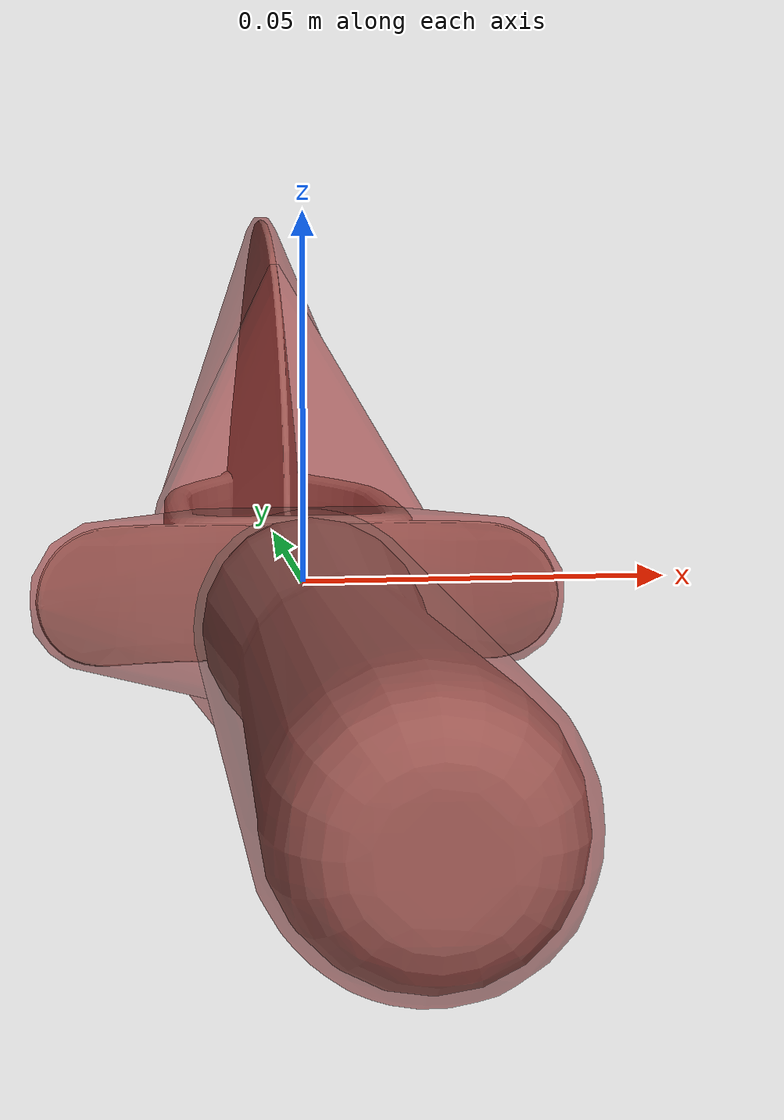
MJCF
<mujoco model="model">
  <option timestep="0.002" gravity="0.0 0.0 -9.81"/>
  <compiler angle="radian"/>
  <asset>
    <mesh file="visual/PizzaCutter001.obj" name="PizzaCutter001_vis"/>
    <mesh file="visual/Prop.obj" name="PizzaCutter001_Prop_vis"/>
    <texture file="visual/T_BC001.png" name="PizzaCutter001_material" type="2d"/>
    <material name="PizzaCutter001_material" rgba="1 1 1 1.0" texture="PizzaCutter001_material" shininess="0.1" specular="1"/>
    <texture file="visual/T_BC001.png" name="PizzaCutter001_Prop_material" type="2d"/>
    <material name="PizzaCutter001_Prop_material" rgba="1 1 1 1.0" texture="PizzaCutter001_Prop_material" shininess="0.1" specular="5"/>
    <mesh file="collision/collision_mesh_collision_0.obj" name="PizzaCutter001_collision_mesh_0"/>
    <mesh file="collision/collision_mesh_collision_1.obj" name="PizzaCutter001_collision_mesh_1"/>
    <mesh file="collision/collision_mesh_collision_2.obj" name="PizzaCutter001_collision_mesh_2"/>
    <mesh file="collision/collision_mesh_collision_3.obj" name="PizzaCutter001_collision_mesh_3"/>
    <mesh file="collision/collision_mesh_collision_4.obj" name="PizzaCutter001_collision_mesh_4"/>
  </asset>
  <default>
    <default class="visual">
      <geom conaffinity="0" contype="0" group="1" type="mesh"/>
    </default>
    <default class="collision">
      <geom group="0" rgba="0.5 0 0 0.5" density="1.0" solref="0.004 1" solimp="0.998 0.998 0.001"/>
    </default>
    <default class="spawn">
      <geom group="0" rgba="1 1 1 0.5" contype="0" conaffinity="0"/>
      <site group="0" rgba="1 1 1 0.5"/>
    </default>
    <default class="region">
      <geom group="1" conaffinity="0" contype="0" rgba="0 1 0 0" mass="0"/>
    </default>
  </default>
  <worldbody>
    <body>
      <body name="object">
        <geom mesh="PizzaCutter001_vis" type="mesh" solimp="0.998 0.998 0.001" solref="0.001 1" friction="0.95 0.3 0.1" class="visual" material="PizzaCutter001_material"/>
        <body name="PizzaCutter001_Prop">
          <geom mesh="PizzaCutter001_Prop_vis" type="mesh" solimp="0.998 0.998 0.001" solref="0.001 1" friction="0.95 0.3 0.1" class="visual" material="PizzaCutter001_Prop_material"/>
        </body>
        <geom class="region" name="reg_bbox" type="box" pos="-9.50000000020379e-08 -0.0003599399999999961 0.0" size="0.037027055 0.12305219 0.0496741"/>
        <geom mesh="PizzaCutter001_collision_mesh_0" type="mesh" class="collision"/>
        <geom mesh="PizzaCutter001_collision_mesh_1" type="mesh" class="collision"/>
        <geom mesh="PizzaCutter001_collision_mesh_2" type="mesh" class="collision"/>
        <geom mesh="PizzaCutter001_collision_mesh_3" type="mesh" class="collision"/>
        <geom mesh="PizzaCutter001_collision_mesh_4" type="mesh" class="collision"/>
      </body>
    </body>
  </worldbody>
  <actuator/>
</mujoco>
